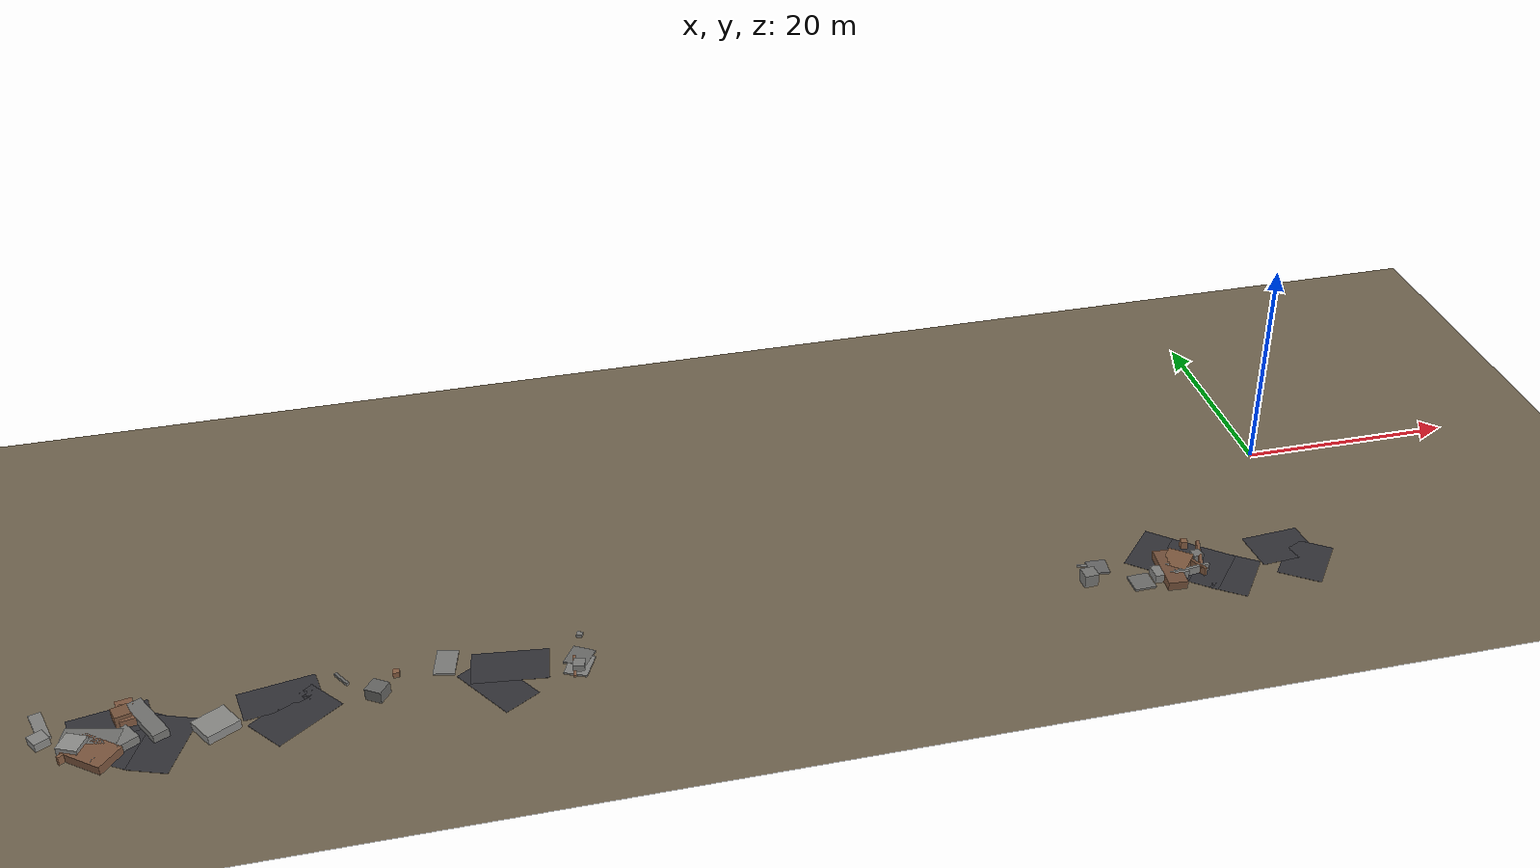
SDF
<sdf version="1.6">
 <world name="navitas_arena">
  <model name="ground_plane">
   <static>true</static>
   <link name="link">
    <collision name="collision">
     <geometry><plane><normal>0 0 1</normal><size>400 400</size></plane></geometry>
     <surface><friction><ode><mu>0.550</mu><mu2>0.550</mu2></ode></friction></surface>
    </collision>
    <visual name="visual">
     <cast_shadows>false</cast_shadows>
     <geometry><plane><normal>0 0 1</normal><size>400 400</size></plane></geometry>
     <material><ambient>0.450 0.400 0.320 1</ambient><diffuse>0.450 0.400 0.320 1</diffuse></material>
    </visual>
   </link>
  </model>
  <model name="road_kolay_1_5">
   <static>true</static>
   <pose>-101.924 -17.214 0.040 0 0 2.769</pose>
   <link name="link">
    <collision name="col"><geometry><box><size>3.601 6.600 0.020</size></box></geometry></collision>
    <visual name="vis">
     <geometry><box><size>3.601 6.600 0.020</size></box></geometry>
     <material><ambient>0.20 0.20 0.22 1</ambient><diffuse>0.20 0.20 0.22 1</diffuse></material>
    </visual>
   </link>
  </model>
  <model name="road_kolay_1_6">
   <static>true</static>
   <pose>-104.519 -15.861 0.040 0 0 2.570</pose>
   <link name="link">
    <collision name="col"><geometry><box><size>4.082 6.600 0.020</size></box></geometry></collision>
    <visual name="vis">
     <geometry><box><size>4.082 6.600 0.020</size></box></geometry>
     <material><ambient>0.20 0.20 0.22 1</ambient><diffuse>0.20 0.20 0.22 1</diffuse></material>
    </visual>
   </link>
  </model>
  <model name="road_kolay_1_7">
   <static>true</static>
   <pose>-106.114 -13.690 0.040 0 0 1.764</pose>
   <link name="link">
    <collision name="col"><geometry><box><size>3.570 6.600 0.020</size></box></geometry></collision>
    <visual name="vis">
     <geometry><box><size>3.570 6.600 0.020</size></box></geometry>
     <material><ambient>0.20 0.20 0.22 1</ambient><diffuse>0.20 0.20 0.22 1</diffuse></material>
    </visual>
   </link>
  </model>
  <model name="road_kolay_2_2">
   <static>true</static>
   <pose>-91.456 -16.234 0.040 0 0 2.228</pose>
   <link name="link">
    <collision name="col"><geometry><box><size>4.017 6.600 0.020</size></box></geometry></collision>
    <visual name="vis">
     <geometry><box><size>4.017 6.600 0.020</size></box></geometry>
     <material><ambient>0.20 0.20 0.22 1</ambient><diffuse>0.20 0.20 0.22 1</diffuse></material>
    </visual>
   </link>
  </model>
  <model name="road_kolay_2_3">
   <static>true</static>
   <pose>-92.635 -13.690 0.040 0 0 1.743</pose>
   <link name="link">
    <collision name="col"><geometry><box><size>3.559 6.600 0.020</size></box></geometry></collision>
    <visual name="vis">
     <geometry><box><size>3.559 6.600 0.020</size></box></geometry>
     <material><ambient>0.20 0.20 0.22 1</ambient><diffuse>0.20 0.20 0.22 1</diffuse></material>
    </visual>
   </link>
  </model>
  <model name="road_kolay_3_4">
   <static>true</static>
   <pose>-74.999 -16.469 0.040 0 0 0.561</pose>
   <link name="link">
    <collision name="col"><geometry><box><size>3.482 6.600 0.020</size></box></geometry></collision>
    <visual name="vis">
     <geometry><box><size>3.482 6.600 0.020</size></box></geometry>
     <material><ambient>0.20 0.20 0.22 1</ambient><diffuse>0.20 0.20 0.22 1</diffuse></material>
    </visual>
   </link>
  </model>
  <model name="road_kolay_3_5">
   <static>true</static>
   <pose>-73.725 -14.317 0.040 0 0 1.448</pose>
   <link name="link">
    <collision name="col"><geometry><box><size>3.853 6.600 0.020</size></box></geometry></collision>
    <visual name="vis">
     <geometry><box><size>3.853 6.600 0.020</size></box></geometry>
     <material><ambient>0.20 0.20 0.22 1</ambient><diffuse>0.20 0.20 0.22 1</diffuse></material>
    </visual>
   </link>
  </model>
  <model name="blk_kolay_1_0_0">
   <static>true</static>
   <pose>-108.758 -16.584 0.592 0 0 1.120</pose>
   <link name="link">
    <collision name="col"><geometry><box><size>1.871 1.871 1.183</size></box></geometry></collision>
    <visual name="vis">
     <geometry><box><size>1.871 1.871 1.183</size></box></geometry>
     <material><ambient>0.57 0.57 0.56 1</ambient><diffuse>0.57 0.57 0.56 1</diffuse></material>
    </visual>
   </link>
  </model>
  <model name="blk_kolay_1_0_1">
   <static>true</static>
   <pose>-103.108 -14.455 0.400 0 0 2.048</pose>
   <link name="link">
    <collision name="col"><geometry><box><size>5.038 1.404 0.800</size></box></geometry></collision>
    <visual name="vis">
     <geometry><box><size>5.038 1.404 0.800</size></box></geometry>
     <material><ambient>0.46 0.46 0.45 1</ambient><diffuse>0.46 0.46 0.45 1</diffuse></material>
    </visual>
   </link>
  </model>
  <model name="blk_kolay_1_0_2">
   <static>true</static>
   <pose>-104.874 -13.181 0.400 0 0 2.835</pose>
   <link name="link">
    <collision name="col"><geometry><box><size>1.392 1.392 0.800</size></box></geometry></collision>
    <visual name="vis">
     <geometry><box><size>1.392 1.392 0.800</size></box></geometry>
     <material><ambient>0.50 0.35 0.25 1</ambient><diffuse>0.50 0.35 0.25 1</diffuse></material>
    </visual>
   </link>
  </model>
  <model name="blk_kolay_1_0_3">
   <static>true</static>
   <pose>-108.861 -16.976 0.400 0 0 0.630</pose>
   <link name="link">
    <collision name="col"><geometry><box><size>2.540 0.265 0.800</size></box></geometry></collision>
    <visual name="vis">
     <geometry><box><size>2.540 0.265 0.800</size></box></geometry>
     <material><ambient>0.54 0.38 0.27 1</ambient><diffuse>0.54 0.38 0.27 1</diffuse></material>
    </visual>
   </link>
  </model>
  <model name="blk_kolay_1_0_4">
   <static>true</static>
   <pose>-105.132 -13.625 0.572 0 0 0.302</pose>
   <link name="link">
    <collision name="col"><geometry><box><size>1.366 1.366 1.145</size></box></geometry></collision>
    <visual name="vis">
     <geometry><box><size>1.366 1.366 1.145</size></box></geometry>
     <material><ambient>0.48 0.34 0.24 1</ambient><diffuse>0.48 0.34 0.24 1</diffuse></material>
    </visual>
   </link>
  </model>
  <model name="blk_kolay_1_0_5">
   <static>true</static>
   <pose>-107.372 -15.776 0.400 0 0 2.893</pose>
   <link name="link">
    <collision name="col"><geometry><box><size>4.746 1.881 0.800</size></box></geometry></collision>
    <visual name="vis">
     <geometry><box><size>4.746 1.881 0.800</size></box></geometry>
     <material><ambient>0.45 0.45 0.44 1</ambient><diffuse>0.45 0.45 0.44 1</diffuse></material>
    </visual>
   </link>
  </model>
  <model name="blk_kolay_1_0_6">
   <static>true</static>
   <pose>-107.311 -17.447 0.400 0 0 2.454</pose>
   <link name="link">
    <collision name="col"><geometry><box><size>4.036 2.737 0.800</size></box></geometry></collision>
    <visual name="vis">
     <geometry><box><size>4.036 2.737 0.800</size></box></geometry>
     <material><ambient>0.50 0.35 0.25 1</ambient><diffuse>0.50 0.35 0.25 1</diffuse></material>
    </visual>
   </link>
  </model>
  <model name="blk_kolay_1_0_7">
   <static>true</static>
   <pose>-108.464 -16.484 0.400 0 0 0.916</pose>
   <link name="link">
    <collision name="col"><geometry><box><size>0.743 0.743 0.800</size></box></geometry></collision>
    <visual name="vis">
     <geometry><box><size>0.743 0.743 0.800</size></box></geometry>
     <material><ambient>0.45 0.32 0.23 1</ambient><diffuse>0.45 0.32 0.23 1</diffuse></material>
    </visual>
   </link>
  </model>
  <model name="blk_kolay_1_0_8">
   <static>true</static>
   <pose>-106.003 -16.992 0.400 0 0 0.564</pose>
   <link name="link">
    <collision name="col"><geometry><box><size>4.372 1.929 0.800</size></box></geometry></collision>
    <visual name="vis">
     <geometry><box><size>4.372 1.929 0.800</size></box></geometry>
     <material><ambient>0.49 0.49 0.48 1</ambient><diffuse>0.49 0.49 0.48 1</diffuse></material>
    </visual>
   </link>
  </model>
  <model name="blk_kolay_1_0_9">
   <static>true</static>
   <pose>-104.783 -13.126 0.400 0 0 1.754</pose>
   <link name="link">
    <collision name="col"><geometry><box><size>2.755 1.426 0.800</size></box></geometry></collision>
    <visual name="vis">
     <geometry><box><size>2.755 1.426 0.800</size></box></geometry>
     <material><ambient>0.52 0.36 0.26 1</ambient><diffuse>0.52 0.36 0.26 1</diffuse></material>
    </visual>
   </link>
  </model>
  <model name="deb_kolay_3">
   <static>true</static>
   <pose>-111.516 -14.859 0.375 0 0 2.115</pose>
   <link name="link">
    <collision name="col"><geometry><box><size>1.347 1.347 0.750</size></box></geometry></collision>
    <visual name="vis">
     <geometry><box><size>1.347 1.347 0.750</size></box></geometry>
     <material><ambient>0.54 0.54 0.53 1</ambient><diffuse>0.54 0.54 0.53 1</diffuse></material>
    </visual>
   </link>
  </model>
  <model name="deb_kolay_18">
   <static>true</static>
   <pose>-68.127 -16.080 0.374 0 0 1.377</pose>
   <link name="link">
    <collision name="col"><geometry><box><size>0.985 0.985 0.748</size></box></geometry></collision>
    <visual name="vis">
     <geometry><box><size>0.985 0.985 0.748</size></box></geometry>
     <material><ambient>0.50 0.50 0.49 1</ambient><diffuse>0.50 0.50 0.49 1</diffuse></material>
    </visual>
   </link>
  </model>
  <model name="deb_kolay_23">
   <static>true</static>
   <pose>-83.100 -13.205 0.256 0 0 3.020</pose>
   <link name="link">
    <collision name="col"><geometry><box><size>0.543 0.543 0.512</size></box></geometry></collision>
    <visual name="vis">
     <geometry><box><size>0.543 0.543 0.512</size></box></geometry>
     <material><ambient>0.55 0.38 0.27 1</ambient><diffuse>0.55 0.38 0.27 1</diffuse></material>
    </visual>
   </link>
  </model>
  <model name="deb_kolay_31">
   <static>true</static>
   <pose>-84.746 -15.451 0.546 0 0 2.541</pose>
   <link name="link">
    <collision name="col"><geometry><box><size>1.533 1.533 1.091</size></box></geometry></collision>
    <visual name="vis">
     <geometry><box><size>1.533 1.533 1.091</size></box></geometry>
     <material><ambient>0.41 0.41 0.40 1</ambient><diffuse>0.41 0.41 0.40 1</diffuse></material>
    </visual>
   </link>
  </model>
  <model name="deb_kolay_48">
   <static>true</static>
   <pose>-68.047 -15.698 0.087 0 0 1.137</pose>
   <link name="link">
    <collision name="col"><geometry><box><size>2.556 2.065 0.174</size></box></geometry></collision>
    <visual name="vis">
     <geometry><box><size>2.556 2.065 0.174</size></box></geometry>
     <material><ambient>0.52 0.52 0.51 1</ambient><diffuse>0.52 0.52 0.51 1</diffuse></material>
    </visual>
   </link>
  </model>
  <model name="deb_kolay_50">
   <static>true</static>
   <pose>-67.897 -14.620 0.100 0 0 2.584</pose>
   <link name="link">
    <collision name="col"><geometry><box><size>2.038 2.199 0.200</size></box></geometry></collision>
    <visual name="vis">
     <geometry><box><size>2.038 2.199 0.200</size></box></geometry>
     <material><ambient>0.43 0.43 0.42 1</ambient><diffuse>0.43 0.43 0.42 1</diffuse></material>
    </visual>
   </link>
  </model>
  <model name="deb_kolay_54">
   <static>true</static>
   <pose>-68.490 -15.792 0.120 0 0 1.451</pose>
   <link name="link">
    <collision name="col"><geometry><box><size>2.637 0.225 0.241</size></box></geometry></collision>
    <visual name="vis">
     <geometry><box><size>2.637 0.225 0.241</size></box></geometry>
     <material><ambient>0.52 0.36 0.26 1</ambient><diffuse>0.52 0.36 0.26 1</diffuse></material>
    </visual>
   </link>
  </model>
  <model name="deb_kolay_56">
   <static>true</static>
   <pose>-111.616 -12.896 0.160 0 0 1.868</pose>
   <link name="link">
    <collision name="col"><geometry><box><size>3.404 1.039 0.320</size></box></geometry></collision>
    <visual name="vis">
     <geometry><box><size>3.404 1.039 0.320</size></box></geometry>
     <material><ambient>0.52 0.52 0.51 1</ambient><diffuse>0.52 0.52 0.51 1</diffuse></material>
    </visual>
   </link>
  </model>
  <model name="deb_kolay_95">
   <static>true</static>
   <pose>-87.591 -12.714 0.132 0 0 2.111</pose>
   <link name="link">
    <collision name="col"><geometry><box><size>1.824 0.250 0.263</size></box></geometry></collision>
    <visual name="vis">
     <geometry><box><size>1.824 0.250 0.263</size></box></geometry>
     <material><ambient>0.43 0.43 0.42 1</ambient><diffuse>0.43 0.43 0.42 1</diffuse></material>
    </visual>
   </link>
  </model>
  <model name="deb_kolay_107">
   <static>true</static>
   <pose>-78.938 -12.614 0.088 0 0 1.354</pose>
   <link name="link">
    <collision name="col"><geometry><box><size>3.112 1.838 0.176</size></box></geometry></collision>
    <visual name="vis">
     <geometry><box><size>3.112 1.838 0.176</size></box></geometry>
     <material><ambient>0.50 0.50 0.49 1</ambient><diffuse>0.50 0.50 0.49 1</diffuse></material>
    </visual>
   </link>
  </model>
  <model name="deb_kolay_115">
   <static>true</static>
   <pose>-67.465 -11.733 0.153 0 0 2.741</pose>
   <link name="link">
    <collision name="col"><geometry><box><size>0.505 0.505 0.307</size></box></geometry></collision>
    <visual name="vis">
     <geometry><box><size>0.505 0.505 0.307</size></box></geometry>
     <material><ambient>0.49 0.49 0.48 1</ambient><diffuse>0.49 0.49 0.48 1</diffuse></material>
    </visual>
   </link>
  </model>
  <model name="chic_kolay_0">
   <static>true</static>
   <pose>-97.688 -16.351 0.400 0 0 0.536</pose>
   <link name="link">
    <collision name="col"><geometry><box><size>3.024 2.649 0.800</size></box></geometry></collision>
    <visual name="vis">
     <geometry><box><size>3.024 2.649 0.800</size></box></geometry>
     <material><ambient>0.55 0.55 0.54 1</ambient><diffuse>0.55 0.55 0.54 1</diffuse></material>
    </visual>
   </link>
  </model>
  <model name="road_orta_1_4">
   <static>true</static>
   <pose>-9.305 -17.444 0.040 0 0 2.514</pose>
   <link name="link">
    <collision name="col"><geometry><box><size>3.360 5.500 0.020</size></box></geometry></collision>
    <visual name="vis">
     <geometry><box><size>3.360 5.500 0.020</size></box></geometry>
     <material><ambient>0.20 0.20 0.22 1</ambient><diffuse>0.20 0.20 0.22 1</diffuse></material>
    </visual>
   </link>
  </model>
  <model name="road_orta_1_5">
   <static>true</static>
   <pose>-11.328 -15.861 0.040 0 0 2.444</pose>
   <link name="link">
    <collision name="col"><geometry><box><size>3.581 5.500 0.020</size></box></geometry></collision>
    <visual name="vis">
     <geometry><box><size>3.581 5.500 0.020</size></box></geometry>
     <material><ambient>0.20 0.20 0.22 1</ambient><diffuse>0.20 0.20 0.22 1</diffuse></material>
    </visual>
   </link>
  </model>
  <model name="road_orta_1_6">
   <static>true</static>
   <pose>-13.268 -14.213 0.040 0 0 2.430</pose>
   <link name="link">
    <collision name="col"><geometry><box><size>3.311 5.500 0.020</size></box></geometry></collision>
    <visual name="vis">
     <geometry><box><size>3.311 5.500 0.020</size></box></geometry>
     <material><ambient>0.20 0.20 0.22 1</ambient><diffuse>0.20 0.20 0.22 1</diffuse></material>
    </visual>
   </link>
  </model>
  <model name="road_orta_1_7">
   <static>true</static>
   <pose>-15.172 -12.541 0.040 0 0 2.412</pose>
   <link name="link">
    <collision name="col"><geometry><box><size>3.556 5.500 0.020</size></box></geometry></collision>
    <visual name="vis">
     <geometry><box><size>3.556 5.500 0.020</size></box></geometry>
     <material><ambient>0.20 0.20 0.22 1</ambient><diffuse>0.20 0.20 0.22 1</diffuse></material>
    </visual>
   </link>
  </model>
  <model name="road_orta_2_2">
   <static>true</static>
   <pose>-2.313 -16.984 0.040 0 0 2.509</pose>
   <link name="link">
    <collision name="col"><geometry><box><size>3.970 5.500 0.020</size></box></geometry></collision>
    <visual name="vis">
     <geometry><box><size>3.970 5.500 0.020</size></box></geometry>
     <material><ambient>0.20 0.20 0.22 1</ambient><diffuse>0.20 0.20 0.22 1</diffuse></material>
    </visual>
   </link>
  </model>
  <model name="road_orta_2_3">
   <static>true</static>
   <pose>-3.674 -14.464 0.040 0 0 1.647</pose>
   <link name="link">
    <collision name="col"><geometry><box><size>4.134 5.500 0.020</size></box></geometry></collision>
    <visual name="vis">
     <geometry><box><size>4.134 5.500 0.020</size></box></geometry>
     <material><ambient>0.20 0.20 0.22 1</ambient><diffuse>0.20 0.20 0.22 1</diffuse></material>
    </visual>
   </link>
  </model>
  <model name="blk_orta_1_0_0">
   <static>true</static>
   <pose>-13.937 -14.919 0.400 0 0 0.884</pose>
   <link name="link">
    <collision name="col"><geometry><box><size>2.537 2.282 0.800</size></box></geometry></collision>
    <visual name="vis">
     <geometry><box><size>2.537 2.282 0.800</size></box></geometry>
     <material><ambient>0.51 0.36 0.25 1</ambient><diffuse>0.51 0.36 0.25 1</diffuse></material>
    </visual>
   </link>
  </model>
  <model name="blk_orta_1_0_1">
   <static>true</static>
   <pose>-11.653 -14.635 0.400 0 0 1.275</pose>
   <link name="link">
    <collision name="col"><geometry><box><size>3.895 0.292 0.800</size></box></geometry></collision>
    <visual name="vis">
     <geometry><box><size>3.895 0.292 0.800</size></box></geometry>
     <material><ambient>0.50 0.35 0.25 1</ambient><diffuse>0.50 0.35 0.25 1</diffuse></material>
    </visual>
   </link>
  </model>
  <model name="blk_orta_1_0_2">
   <static>true</static>
   <pose>-12.451 -15.841 0.400 0 0 2.009</pose>
   <link name="link">
    <collision name="col"><geometry><box><size>2.307 0.283 0.800</size></box></geometry></collision>
    <visual name="vis">
     <geometry><box><size>2.307 0.283 0.800</size></box></geometry>
     <material><ambient>0.49 0.34 0.24 1</ambient><diffuse>0.49 0.34 0.24 1</diffuse></material>
    </visual>
   </link>
  </model>
  <model name="blk_orta_1_0_3">
   <static>true</static>
   <pose>-15.171 -16.128 0.400 0 0 3.133</pose>
   <link name="link">
    <collision name="col"><geometry><box><size>3.164 1.487 0.800</size></box></geometry></collision>
    <visual name="vis">
     <geometry><box><size>3.164 1.487 0.800</size></box></geometry>
     <material><ambient>0.52 0.52 0.51 1</ambient><diffuse>0.52 0.52 0.51 1</diffuse></material>
    </visual>
   </link>
  </model>
  <model name="blk_orta_1_0_4">
   <static>true</static>
   <pose>-13.347 -16.429 0.400 0 0 0.124</pose>
   <link name="link">
    <collision name="col"><geometry><box><size>3.834 0.242 0.800</size></box></geometry></collision>
    <visual name="vis">
     <geometry><box><size>3.834 0.242 0.800</size></box></geometry>
     <material><ambient>0.52 0.52 0.51 1</ambient><diffuse>0.52 0.52 0.51 1</diffuse></material>
    </visual>
   </link>
  </model>
  <model name="blk_orta_1_0_5">
   <static>true</static>
   <pose>-14.965 -15.780 0.400 0 0 1.500</pose>
   <link name="link">
    <collision name="col"><geometry><box><size>4.817 1.789 0.800</size></box></geometry></collision>
    <visual name="vis">
     <geometry><box><size>4.817 1.789 0.800</size></box></geometry>
     <material><ambient>0.46 0.32 0.23 1</ambient><diffuse>0.46 0.32 0.23 1</diffuse></material>
    </visual>
   </link>
  </model>
  <model name="blk_orta_1_0_6">
   <static>true</static>
   <pose>-12.267 -12.429 0.400 0 0 1.432</pose>
   <link name="link">
    <collision name="col"><geometry><box><size>0.598 0.598 0.800</size></box></geometry></collision>
    <visual name="vis">
     <geometry><box><size>0.598 0.598 0.800</size></box></geometry>
     <material><ambient>0.54 0.38 0.27 1</ambient><diffuse>0.54 0.38 0.27 1</diffuse></material>
    </visual>
   </link>
  </model>
  <model name="blk_orta_1_0_7">
   <static>true</static>
   <pose>-11.887 -14.483 0.400 0 0 0.067</pose>
   <link name="link">
    <collision name="col"><geometry><box><size>0.938 0.938 0.800</size></box></geometry></collision>
    <visual name="vis">
     <geometry><box><size>0.938 0.938 0.800</size></box></geometry>
     <material><ambient>0.47 0.47 0.46 1</ambient><diffuse>0.47 0.47 0.46 1</diffuse></material>
    </visual>
   </link>
  </model>
  <model name="deb_orta_29">
   <static>true</static>
   <pose>-20.957 -13.534 0.103 0 0 3.064</pose>
   <link name="link">
    <collision name="col"><geometry><box><size>1.823 1.838 0.205</size></box></geometry></collision>
    <visual name="vis">
     <geometry><box><size>1.823 1.838 0.205</size></box></geometry>
     <material><ambient>0.41 0.41 0.41 1</ambient><diffuse>0.41 0.41 0.41 1</diffuse></material>
    </visual>
   </link>
  </model>
  <model name="deb_orta_45">
   <static>true</static>
   <pose>-22.447 -15.290 0.600 0 0 0.048</pose>
   <link name="link">
    <collision name="col"><geometry><box><size>1.280 1.280 1.200</size></box></geometry></collision>
    <visual name="vis">
     <geometry><box><size>1.280 1.280 1.200</size></box></geometry>
     <material><ambient>0.47 0.47 0.46 1</ambient><diffuse>0.47 0.47 0.46 1</diffuse></material>
    </visual>
   </link>
  </model>
  <model name="deb_orta_74">
   <static>true</static>
   <pose>-21.585 -13.152 0.095 0 0 2.892</pose>
   <link name="link">
    <collision name="col"><geometry><box><size>2.259 0.184 0.190</size></box></geometry></collision>
    <visual name="vis">
     <geometry><box><size>2.259 0.184 0.190</size></box></geometry>
     <material><ambient>0.54 0.54 0.53 1</ambient><diffuse>0.54 0.54 0.53 1</diffuse></material>
    </visual>
   </link>
  </model>
  <model name="deb_orta_127">
   <static>true</static>
   <pose>-17.923 -16.508 0.097 0 0 0.027</pose>
   <link name="link">
    <collision name="col"><geometry><box><size>1.994 2.046 0.194</size></box></geometry></collision>
    <visual name="vis">
     <geometry><box><size>1.994 2.046 0.194</size></box></geometry>
     <material><ambient>0.44 0.44 0.43 1</ambient><diffuse>0.44 0.44 0.43 1</diffuse></material>
    </visual>
   </link>
  </model>
 </world>
</sdf>
